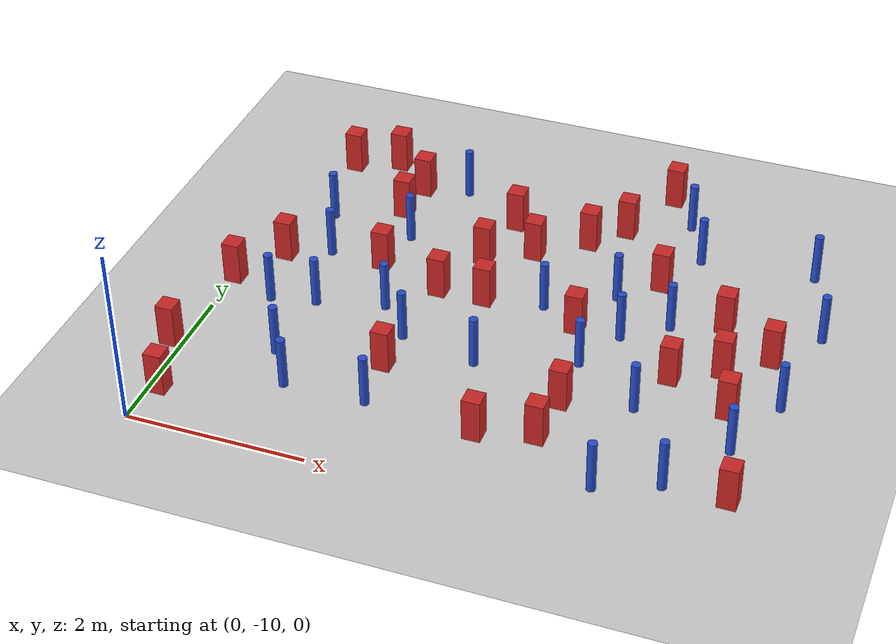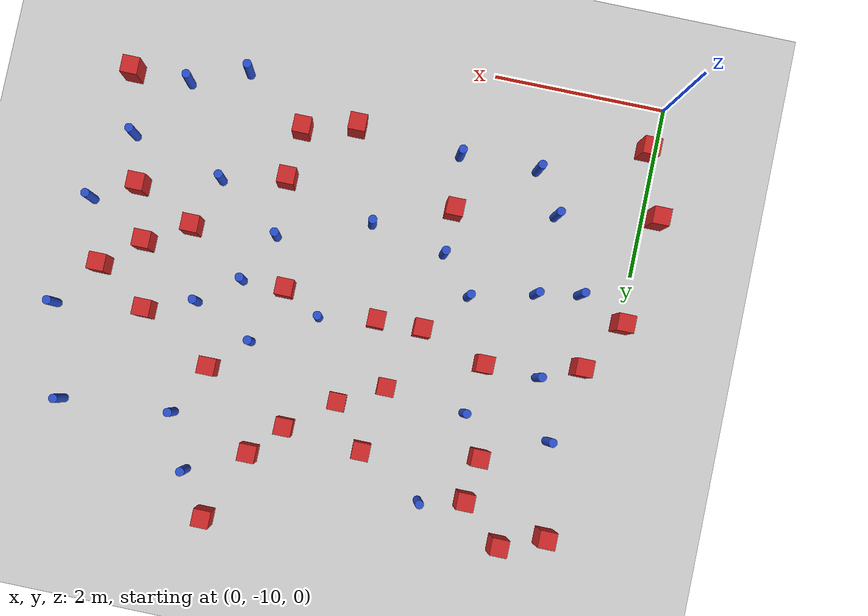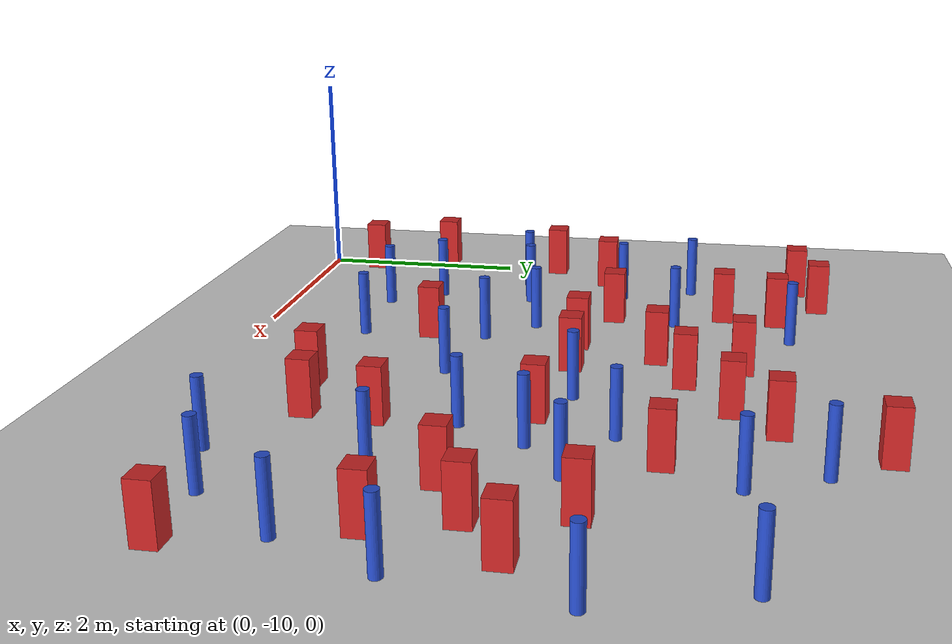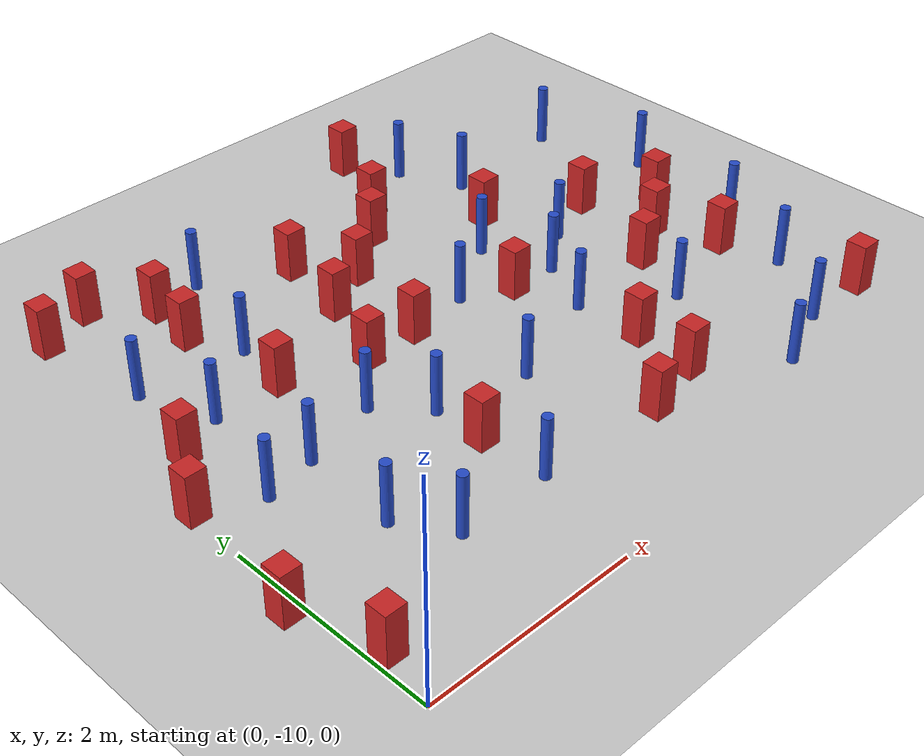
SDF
<sdf version="1.6">
 <world name="default">
  <model name="ground_plane">
   <static>1</static>
   <link name="link">
    <collision name="collision">
     <geometry><plane><normal>0 0 1</normal><size>100 100</size></plane></geometry>
     <surface><friction><ode><mu>100</mu><mu2>50</mu2></ode></friction></surface>
    </collision>
    <visual name="visual">
     <cast_shadows>0</cast_shadows>
     <geometry><plane><normal>0 0 1</normal><size>100 100</size></plane></geometry>
     <material>
      <ambient>1.0 1.0 1.0 1.0</ambient>
      <diffuse>0.8 0.8 0.8 1.0</diffuse>
      <specular>0.01 0.01 0.01 1.000000</specular>
     </material>
    </visual>
   </link>
  </model>
  <model name="pole_obstacle2">
   <static>true</static>
   <pose>6.14830196329 -5.28207078286 2.88873142074e-08 -9.90536690842e-09 4.60219948965e-07 -1.20965994976e-07</pose>
   <link name="link">
    <pose>0 0 0.3 0 -0 0</pose>
    <inertial>
     <mass>1</mass>
     <inertia><ixx>0.145833</ixx><ixy>0</ixy><ixz>0</ixz><iyy>0.145833</iyy><iyz>0</iyz><izz>0.125</izz></inertia>
    </inertial>
    <collision name="collision">
     <geometry><cylinder><radius>0.05</radius><length>.6</length></cylinder></geometry>
    </collision>
    <visual name="visual">
     <geometry><cylinder><radius>0.05</radius><length>.6</length></cylinder></geometry>
     <material>
      <script><name>Gazebo/Blue</name><uri>file://media/materials/scripts/gazebo.material</uri></script>
     </material>
    </visual>
   </link>
  </model>
  <model name="square_post_obstacle3">
   <static>true</static>
   <pose>0.921883301108 -4.67364424188 8.22691968438e-08 7.22125133819e-06 -7.54495500217e-07 2.29674213826e-05</pose>
   <link name="link">
    <pose>0 0 0.25 0 -0 0</pose>
    <inertial>
     <mass>100</mass>
     <inertia>
      <ixx>0.166667</ixx>
      <ixy>0</ixy>
      <ixz>0</ixz>
      <iyy>0.166667</iyy>
      <iyz>0</iyz>
      <izz>0.166667</izz>
     </inertia>
    </inertial>
    <collision name="collision"><geometry><box><size>.2 .2 .5</size></box></geometry></collision>
    <visual name="visual">
     <geometry><box><size>.2 .2 .5</size></box></geometry>
     <material>
      <script><name>Gazebo/Red</name><uri>file://media/materials/scripts/gazebo.material</uri></script>
     </material>
    </visual>
   </link>
  </model>
  <model name="pole_obstacle19">
   <static>true</static>
   <pose>4.8620279379 -6.68694951496 2.88873142074e-08 -9.90536690842e-09 4.60219948965e-07 -1.20965994976e-07</pose>
   <link name="link">
    <pose>0 0 0.3 0 -0 0</pose>
    <inertial>
     <mass>1</mass>
     <inertia><ixx>0.145833</ixx><ixy>0</ixy><ixz>0</ixz><iyy>0.145833</iyy><iyz>0</iyz><izz>0.125</izz></inertia>
    </inertial>
    <collision name="collision">
     <geometry><cylinder><radius>0.05</radius><length>.6</length></cylinder></geometry>
    </collision>
    <visual name="visual">
     <geometry><cylinder><radius>0.05</radius><length>.6</length></cylinder></geometry>
     <material>
      <script><name>Gazebo/Blue</name><uri>file://media/materials/scripts/gazebo.material</uri></script>
     </material>
    </visual>
   </link>
  </model>
  <model name="pole_obstacle20">
   <static>true</static>
   <pose>3.45152919088 -6.79619398511 2.88873142074e-08 -9.90536689859e-09 4.60219948989e-07 -1.20965994961e-07</pose>
   <link name="link">
    <pose>0 0 0.3 0 -0 0</pose>
    <inertial>
     <mass>1</mass>
     <inertia><ixx>0.145833</ixx><ixy>0</ixy><ixz>0</ixz><iyy>0.145833</iyy><iyz>0</iyz><izz>0.125</izz></inertia>
    </inertial>
    <collision name="collision">
     <geometry><cylinder><radius>0.05</radius><length>.6</length></cylinder></geometry>
    </collision>
    <visual name="visual">
     <geometry><cylinder><radius>0.05</radius><length>.6</length></cylinder></geometry>
     <material>
      <script><name>Gazebo/Blue</name><uri>file://media/materials/scripts/gazebo.material</uri></script>
     </material>
    </visual>
   </link>
  </model>
  <model name="pole_obstacle24">
   <static>true</static>
   <pose>1.06063492291 -7.56927164042 2.88873142074e-08 -9.90536689852e-09 4.60219948989e-07 -1.2096599496e-07</pose>
   <link name="link">
    <pose>0 0 0.3 0 -0 0</pose>
    <inertial>
     <mass>1</mass>
     <inertia><ixx>0.145833</ixx><ixy>0</ixy><ixz>0</ixz><iyy>0.145833</iyy><iyz>0</iyz><izz>0.125</izz></inertia>
    </inertial>
    <collision name="collision">
     <geometry><cylinder><radius>0.05</radius><length>.6</length></cylinder></geometry>
    </collision>
    <visual name="visual">
     <geometry><cylinder><radius>0.05</radius><length>.6</length></cylinder></geometry>
     <material>
      <script><name>Gazebo/Blue</name><uri>file://media/materials/scripts/gazebo.material</uri></script>
     </material>
    </visual>
   </link>
  </model>
  <model name="square_post_obstacle21">
   <static>true</static>
   <pose>4.13120323358 -8.29425294146 8.22691968438e-08 7.22125133819e-06 -7.54495500217e-07 2.29674213826e-05</pose>
   <link name="link">
    <pose>0 0 0.25 0 -0 0</pose>
    <inertial>
     <mass>100</mass>
     <inertia>
      <ixx>0.166667</ixx>
      <ixy>0</ixy>
      <ixz>0</ixz>
      <iyy>0.166667</iyy>
      <iyz>0</iyz>
      <izz>0.166667</izz>
     </inertia>
    </inertial>
    <collision name="collision"><geometry><box><size>.2 .2 .5</size></box></geometry></collision>
    <visual name="visual">
     <geometry><box><size>.2 .2 .5</size></box></geometry>
     <material>
      <script><name>Gazebo/Red</name><uri>file://media/materials/scripts/gazebo.material</uri></script>
     </material>
    </visual>
   </link>
  </model>
  <model name="square_post_obstacle25">
   <static>true</static>
   <pose>3.04130959436 -5.89216657844 8.22691968438e-08 7.2212513382e-06 -7.54495500217e-07 2.29674213826e-05</pose>
   <link name="link">
    <pose>0 0 0.25 0 -0 0</pose>
    <inertial>
     <mass>100</mass>
     <inertia>
      <ixx>0.166667</ixx>
      <ixy>0</ixy>
      <ixz>0</ixz>
      <iyy>0.166667</iyy>
      <iyz>0</iyz>
      <izz>0.166667</izz>
     </inertia>
    </inertial>
    <collision name="collision"><geometry><box><size>.2 .2 .5</size></box></geometry></collision>
    <visual name="visual">
     <geometry><box><size>.2 .2 .5</size></box></geometry>
     <material>
      <script><name>Gazebo/Red</name><uri>file://media/materials/scripts/gazebo.material</uri></script>
     </material>
    </visual>
   </link>
  </model>
  <model name="pole_obstacle38">
   <static>true</static>
   <pose>4.86386477425 -5.39168850401 2.88873142074e-08 -9.90536690842e-09 4.60219948965e-07 -1.20965994976e-07</pose>
   <link name="link">
    <pose>0 0 0.3 0 -0 0</pose>
    <inertial>
     <mass>1</mass>
     <inertia><ixx>0.145833</ixx><ixy>0</ixy><ixz>0</ixz><iyy>0.145833</iyy><iyz>0</iyz><izz>0.125</izz></inertia>
    </inertial>
    <collision name="collision">
     <geometry><cylinder><radius>0.05</radius><length>.6</length></cylinder></geometry>
    </collision>
    <visual name="visual">
     <geometry><cylinder><radius>0.05</radius><length>.6</length></cylinder></geometry>
     <material>
      <script><name>Gazebo/Blue</name><uri>file://media/materials/scripts/gazebo.material</uri></script>
     </material>
    </visual>
   </link>
  </model>
  <model name="pole_obstacle48">
   <static>true</static>
   <pose>6.30036852548 -7.6127516848 2.88873142074e-08 -9.90536690842e-09 4.60219948965e-07 -1.20965994976e-07</pose>
   <link name="link">
    <pose>0 0 0.3 0 -0 0</pose>
    <inertial>
     <mass>1</mass>
     <inertia><ixx>0.145833</ixx><ixy>0</ixy><ixz>0</ixz><iyy>0.145833</iyy><iyz>0</iyz><izz>0.125</izz></inertia>
    </inertial>
    <collision name="collision">
     <geometry><cylinder><radius>0.05</radius><length>.6</length></cylinder></geometry>
    </collision>
    <visual name="visual">
     <geometry><cylinder><radius>0.05</radius><length>.6</length></cylinder></geometry>
     <material>
      <script><name>Gazebo/Blue</name><uri>file://media/materials/scripts/gazebo.material</uri></script>
     </material>
    </visual>
   </link>
  </model>
  <model name="pole_obstacle49">
   <static>true</static>
   <pose>4.16082054586 -6.36403205399 2.88873142074e-08 -9.90536690842e-09 4.60219948965e-07 -1.20965994976e-07</pose>
   <link name="link">
    <pose>0 0 0.3 0 -0 0</pose>
    <inertial>
     <mass>1</mass>
     <inertia><ixx>0.145833</ixx><ixy>0</ixy><ixz>0</ixz><iyy>0.145833</iyy><iyz>0</iyz><izz>0.125</izz></inertia>
    </inertial>
    <collision name="collision">
     <geometry><cylinder><radius>0.05</radius><length>.6</length></cylinder></geometry>
    </collision>
    <visual name="visual">
     <geometry><cylinder><radius>0.05</radius><length>.6</length></cylinder></geometry>
     <material>
      <script><name>Gazebo/Blue</name><uri>file://media/materials/scripts/gazebo.material</uri></script>
     </material>
    </visual>
   </link>
  </model>
  <model name="pole_obstacle50">
   <static>true</static>
   <pose>2.22852226633 -8.97316546732 2.88873142074e-08 -9.90536692318e-09 4.6021994893e-07 -1.20965994988e-07</pose>
   <link name="link">
    <pose>0 0 0.3 0 -0 0</pose>
    <inertial>
     <mass>1</mass>
     <inertia><ixx>0.145833</ixx><ixy>0</ixy><ixz>0</ixz><iyy>0.145833</iyy><iyz>0</iyz><izz>0.125</izz></inertia>
    </inertial>
    <collision name="collision">
     <geometry><cylinder><radius>0.05</radius><length>.6</length></cylinder></geometry>
    </collision>
    <visual name="visual">
     <geometry><cylinder><radius>0.05</radius><length>.6</length></cylinder></geometry>
     <material>
      <script><name>Gazebo/Blue</name><uri>file://media/materials/scripts/gazebo.material</uri></script>
     </material>
    </visual>
   </link>
  </model>
  <model name="pole_obstacle51">
   <static>true</static>
   <pose>4.58739852245 -4.77712400438 2.88873142074e-08 -9.90536690842e-09 4.60219948965e-07 -1.20965994976e-07</pose>
   <link name="link">
    <pose>0 0 0.3 0 -0 0</pose>
    <inertial>
     <mass>1</mass>
     <inertia><ixx>0.145833</ixx><ixy>0</ixy><ixz>0</ixz><iyy>0.145833</iyy><iyz>0</iyz><izz>0.125</izz></inertia>
    </inertial>
    <collision name="collision">
     <geometry><cylinder><radius>0.05</radius><length>.6</length></cylinder></geometry>
    </collision>
    <visual name="visual">
     <geometry><cylinder><radius>0.05</radius><length>.6</length></cylinder></geometry>
     <material>
      <script><name>Gazebo/Blue</name><uri>file://media/materials/scripts/gazebo.material</uri></script>
     </material>
    </visual>
   </link>
  </model>
  <model name="pole_obstacle58">
   <static>true</static>
   <pose>4.39896044574 -7.03645893247 2.88873142074e-08 -9.90536690842e-09 4.60219948965e-07 -1.20965994976e-07</pose>
   <link name="link">
    <pose>0 0 0.3 0 -0 0</pose>
    <inertial>
     <mass>1</mass>
     <inertia><ixx>0.145833</ixx><ixy>0</ixy><ixz>0</ixz><iyy>0.145833</iyy><iyz>0</iyz><izz>0.125</izz></inertia>
    </inertial>
    <collision name="collision">
     <geometry><cylinder><radius>0.05</radius><length>.6</length></cylinder></geometry>
    </collision>
    <visual name="visual">
     <geometry><cylinder><radius>0.05</radius><length>.6</length></cylinder></geometry>
     <material>
      <script><name>Gazebo/Blue</name><uri>file://media/materials/scripts/gazebo.material</uri></script>
     </material>
    </visual>
   </link>
  </model>
  <model name="pole_obstacle60">
   <static>true</static>
   <pose>5.97434079189 -8.43649098681 2.88873142074e-08 -9.9053668967e-09 4.60219948993e-07 -1.20965994957e-07</pose>
   <link name="link">
    <pose>0 0 0.3 0 -0 0</pose>
    <inertial>
     <mass>1</mass>
     <inertia><ixx>0.145833</ixx><ixy>0</ixy><ixz>0</ixz><iyy>0.145833</iyy><iyz>0</iyz><izz>0.125</izz></inertia>
    </inertial>
    <collision name="collision">
     <geometry><cylinder><radius>0.05</radius><length>.6</length></cylinder></geometry>
    </collision>
    <visual name="visual">
     <geometry><cylinder><radius>0.05</radius><length>.6</length></cylinder></geometry>
     <material>
      <script><name>Gazebo/Blue</name><uri>file://media/materials/scripts/gazebo.material</uri></script>
     </material>
    </visual>
   </link>
  </model>
  <model name="pole_obstacle67">
   <static>true</static>
   <pose>1.58931098141 -6.06284011307 2.88873142074e-08 -9.90536689852e-09 4.60219948989e-07 -1.2096599496e-07</pose>
   <link name="link">
    <pose>0 0 0.3 0 -0 0</pose>
    <inertial>
     <mass>1</mass>
     <inertia><ixx>0.145833</ixx><ixy>0</ixy><ixz>0</ixz><iyy>0.145833</iyy><iyz>0</iyz><izz>0.125</izz></inertia>
    </inertial>
    <collision name="collision">
     <geometry><cylinder><radius>0.05</radius><length>.6</length></cylinder></geometry>
    </collision>
    <visual name="visual">
     <geometry><cylinder><radius>0.05</radius><length>.6</length></cylinder></geometry>
     <material>
      <script><name>Gazebo/Blue</name><uri>file://media/materials/scripts/gazebo.material</uri></script>
     </material>
    </visual>
   </link>
  </model>
  <model name="square_post_obstacle54">
   <static>true</static>
   <pose>1.48673899308 -6.65389181109 8.22691968438e-08 7.2212513382e-06 -7.54495500217e-07 2.29674213826e-05</pose>
   <link name="link">
    <pose>0 0 0.25 0 -0 0</pose>
    <inertial>
     <mass>100</mass>
     <inertia>
      <ixx>0.166667</ixx>
      <ixy>0</ixy>
      <ixz>0</ixz>
      <iyy>0.166667</iyy>
      <iyz>0</iyz>
      <izz>0.166667</izz>
     </inertia>
    </inertial>
    <collision name="collision"><geometry><box><size>.2 .2 .5</size></box></geometry></collision>
    <visual name="visual">
     <geometry><box><size>.2 .2 .5</size></box></geometry>
     <material>
      <script><name>Gazebo/Red</name><uri>file://media/materials/scripts/gazebo.material</uri></script>
     </material>
    </visual>
   </link>
  </model>
  <model name="square_post_obstacle60">
   <static>true</static>
   <pose>2.66152526372 -5.40451966669 8.22691968438e-08 7.2212513382e-06 -7.54495500217e-07 2.29674213826e-05</pose>
   <link name="link">
    <pose>0 0 0.25 0 -0 0</pose>
    <inertial>
     <mass>100</mass>
     <inertia>
      <ixx>0.166667</ixx>
      <ixy>0</ixy>
      <ixz>0</ixz>
      <iyy>0.166667</iyy>
      <iyz>0</iyz>
      <izz>0.166667</izz>
     </inertia>
    </inertial>
    <collision name="collision"><geometry><box><size>.2 .2 .5</size></box></geometry></collision>
    <visual name="visual">
     <geometry><box><size>.2 .2 .5</size></box></geometry>
     <material>
      <script><name>Gazebo/Red</name><uri>file://media/materials/scripts/gazebo.material</uri></script>
     </material>
    </visual>
   </link>
  </model>
  <model name="pole_obstacle92">
   <static>true</static>
   <pose>3.06447727545 -7.98257437895 2.88873142074e-08 -9.90536692129e-09 4.60219948935e-07 -1.20965994985e-07</pose>
   <link name="link">
    <pose>0 0 0.3 0 -0 0</pose>
    <inertial>
     <mass>1</mass>
     <inertia><ixx>0.145833</ixx><ixy>0</ixy><ixz>0</ixz><iyy>0.145833</iyy><iyz>0</iyz><izz>0.125</izz></inertia>
    </inertial>
    <collision name="collision">
     <geometry><cylinder><radius>0.05</radius><length>.6</length></cylinder></geometry>
    </collision>
    <visual name="visual">
     <geometry><cylinder><radius>0.05</radius><length>.6</length></cylinder></geometry>
     <material>
      <script><name>Gazebo/Blue</name><uri>file://media/materials/scripts/gazebo.material</uri></script>
     </material>
    </visual>
   </link>
  </model>
  <model name="pole_obstacle93">
   <static>true</static>
   <pose>1.00525685277 -8.50765018578 2.88873142074e-08 -9.90536690572e-09 4.60219948972e-07 -1.20965994971e-07</pose>
   <link name="link">
    <pose>0 0 0.3 0 -0 0</pose>
    <inertial>
     <mass>1</mass>
     <inertia><ixx>0.145833</ixx><ixy>0</ixy><ixz>0</ixz><iyy>0.145833</iyy><iyz>0</iyz><izz>0.125</izz></inertia>
    </inertial>
    <collision name="collision">
     <geometry><cylinder><radius>0.05</radius><length>.6</length></cylinder></geometry>
    </collision>
    <visual name="visual">
     <geometry><cylinder><radius>0.05</radius><length>.6</length></cylinder></geometry>
     <material>
      <script><name>Gazebo/Blue</name><uri>file://media/materials/scripts/gazebo.material</uri></script>
     </material>
    </visual>
   </link>
  </model>
  <model name="pole_obstacle96">
   <static>true</static>
   <pose>1.90405769673 -4.97104754531 2.88873142074e-08 -9.90536689852e-09 4.60219948989e-07 -1.2096599496e-07</pose>
   <link name="link">
    <pose>0 0 0.3 0 -0 0</pose>
    <inertial>
     <mass>1</mass>
     <inertia><ixx>0.145833</ixx><ixy>0</ixy><ixz>0</ixz><iyy>0.145833</iyy><iyz>0</iyz><izz>0.125</izz></inertia>
    </inertial>
    <collision name="collision">
     <geometry><cylinder><radius>0.05</radius><length>.6</length></cylinder></geometry>
    </collision>
    <visual name="visual">
     <geometry><cylinder><radius>0.05</radius><length>.6</length></cylinder></geometry>
     <material>
      <script><name>Gazebo/Blue</name><uri>file://media/materials/scripts/gazebo.material</uri></script>
     </material>
    </visual>
   </link>
  </model>
  <model name="square_post_obstacle91">
   <static>true</static>
   <pose>0.379425409082 -6.84290227758 8.22691968438e-08 7.22125133819e-06 -7.54495500217e-07 2.29674213826e-05</pose>
   <link name="link">
    <pose>0 0 0.25 0 -0 0</pose>
    <inertial>
     <mass>100</mass>
     <inertia>
      <ixx>0.166667</ixx>
      <ixy>0</ixy>
      <ixz>0</ixz>
      <iyy>0.166667</iyy>
      <iyz>0</iyz>
      <izz>0.166667</izz>
     </inertia>
    </inertial>
    <collision name="collision"><geometry><box><size>.2 .2 .5</size></box></geometry></collision>
    <visual name="visual">
     <geometry><box><size>.2 .2 .5</size></box></geometry>
     <material>
      <script><name>Gazebo/Red</name><uri>file://media/materials/scripts/gazebo.material</uri></script>
     </material>
    </visual>
   </link>
  </model>
  <model name="pole_obstacle100">
   <static>true</static>
   <pose>4.87629713632 -8.128599076 2.88873142074e-08 -9.9053668967e-09 4.60219948993e-07 -1.20965994957e-07</pose>
   <link name="link">
    <pose>0 0 0.3 0 -0 0</pose>
    <inertial>
     <mass>1</mass>
     <inertia><ixx>0.145833</ixx><ixy>0</ixy><ixz>0</ixz><iyy>0.145833</iyy><iyz>0</iyz><izz>0.125</izz></inertia>
    </inertial>
    <collision name="collision">
     <geometry><cylinder><radius>0.05</radius><length>.6</length></cylinder></geometry>
    </collision>
    <visual name="visual">
     <geometry><cylinder><radius>0.05</radius><length>.6</length></cylinder></geometry>
     <material>
      <script><name>Gazebo/Blue</name><uri>file://media/materials/scripts/gazebo.material</uri></script>
     </material>
    </visual>
   </link>
  </model>
  <model name="square_post_obstacle92">
   <static>true</static>
   <pose>2.79375519177 -6.90324306982 8.22691968438e-08 7.22125133819e-06 -7.54495500217e-07 2.29674213826e-05</pose>
   <link name="link">
    <pose>0 0 0.25 0 -0 0</pose>
    <inertial>
     <mass>100</mass>
     <inertia>
      <ixx>0.166667</ixx>
      <ixy>0</ixy>
      <ixz>0</ixz>
      <iyy>0.166667</iyy>
      <iyz>0</iyz>
      <izz>0.166667</izz>
     </inertia>
    </inertial>
    <collision name="collision"><geometry><box><size>.2 .2 .5</size></box></geometry></collision>
    <visual name="visual">
     <geometry><box><size>.2 .2 .5</size></box></geometry>
     <material>
      <script><name>Gazebo/Red</name><uri>file://media/materials/scripts/gazebo.material</uri></script>
     </material>
    </visual>
   </link>
  </model>
  <model name="square_post_obstacle93">
   <static>true</static>
   <pose>5.09053748616 -7.53369930563 8.22691968438e-08 7.2212513382e-06 -7.54495500217e-07 2.29674213826e-05</pose>
   <link name="link">
    <pose>0 0 0.25 0 -0 0</pose>
    <inertial>
     <mass>100</mass>
     <inertia>
      <ixx>0.166667</ixx>
      <ixy>0</ixy>
      <ixz>0</ixz>
      <iyy>0.166667</iyy>
      <iyz>0</iyz>
      <izz>0.166667</izz>
     </inertia>
    </inertial>
    <collision name="collision"><geometry><box><size>.2 .2 .5</size></box></geometry></collision>
    <visual name="visual">
     <geometry><box><size>.2 .2 .5</size></box></geometry>
     <material>
      <script><name>Gazebo/Red</name><uri>file://media/materials/scripts/gazebo.material</uri></script>
     </material>
    </visual>
   </link>
  </model>
  <model name="square_post_obstacle94">
   <static>true</static>
   <pose>3.46291798454 -9.05596250605 8.22691968438e-08 7.22125133819e-06 -7.54495500217e-07 2.29674213826e-05</pose>
   <link name="link">
    <pose>0 0 0.25 0 -0 0</pose>
    <inertial>
     <mass>100</mass>
     <inertia>
      <ixx>0.166667</ixx>
      <ixy>0</ixy>
      <ixz>0</ixz>
      <iyy>0.166667</iyy>
      <iyz>0</iyz>
      <izz>0.166667</izz>
     </inertia>
    </inertial>
    <collision name="collision"><geometry><box><size>.2 .2 .5</size></box></geometry></collision>
    <visual name="visual">
     <geometry><box><size>.2 .2 .5</size></box></geometry>
     <material>
      <script><name>Gazebo/Red</name><uri>file://media/materials/scripts/gazebo.material</uri></script>
     </material>
    </visual>
   </link>
  </model>
  <model name="square_post_obstacle95">
   <static>true</static>
   <pose>0.122400278115 -9.47579251404 8.22691968438e-08 7.22125133819e-06 -7.54495500217e-07 2.29674213826e-05</pose>
   <link name="link">
    <pose>0 0 0.25 0 -0 0</pose>
    <inertial>
     <mass>100</mass>
     <inertia>
      <ixx>0.166667</ixx>
      <ixy>0</ixy>
      <ixz>0</ixz>
      <iyy>0.166667</iyy>
      <iyz>0</iyz>
      <izz>0.166667</izz>
     </inertia>
    </inertial>
    <collision name="collision"><geometry><box><size>.2 .2 .5</size></box></geometry></collision>
    <visual name="visual">
     <geometry><box><size>.2 .2 .5</size></box></geometry>
     <material>
      <script><name>Gazebo/Red</name><uri>file://media/materials/scripts/gazebo.material</uri></script>
     </material>
    </visual>
   </link>
  </model>
  <model name="square_post_obstacle101">
   <static>true</static>
   <pose>6.14324402518 -9.16347679035 8.22691968438e-08 7.22125133819e-06 -7.54495500217e-07 2.29674213826e-05</pose>
   <link name="link">
    <pose>0 0 0.25 0 -0 0</pose>
    <inertial>
     <mass>100</mass>
     <inertia>
      <ixx>0.166667</ixx>
      <ixy>0</ixy>
      <ixz>0</ixz>
      <iyy>0.166667</iyy>
      <iyz>0</iyz>
      <izz>0.166667</izz>
     </inertia>
    </inertial>
    <collision name="collision"><geometry><box><size>.2 .2 .5</size></box></geometry></collision>
    <visual name="visual">
     <geometry><box><size>.2 .2 .5</size></box></geometry>
     <material>
      <script><name>Gazebo/Red</name><uri>file://media/materials/scripts/gazebo.material</uri></script>
     </material>
    </visual>
   </link>
  </model>
  <model name="square_post_obstacle103">
   <static>true</static>
   <pose>4.56479990707 -5.98583418884 8.22691968438e-08 7.2212513382e-06 -7.54495500217e-07 2.29674213826e-05</pose>
   <link name="link">
    <pose>0 0 0.25 0 -0 0</pose>
    <inertial>
     <mass>100</mass>
     <inertia>
      <ixx>0.166667</ixx>
      <ixy>0</ixy>
      <ixz>0</ixz>
      <iyy>0.166667</iyy>
      <iyz>0</iyz>
      <izz>0.166667</izz>
     </inertia>
    </inertial>
    <collision name="collision"><geometry><box><size>.2 .2 .5</size></box></geometry></collision>
    <visual name="visual">
     <geometry><box><size>.2 .2 .5</size></box></geometry>
     <material>
      <script><name>Gazebo/Red</name><uri>file://media/materials/scripts/gazebo.material</uri></script>
     </material>
    </visual>
   </link>
  </model>
  <model name="square_post_obstacle105">
   <static>true</static>
   <pose>-0.137528142259 -8.70899687216 8.22691968438e-08 7.22125133819e-06 -7.54495500217e-07 2.29674213826e-05</pose>
   <link name="link">
    <pose>0 0 0.25 0 -0 0</pose>
    <inertial>
     <mass>100</mass>
     <inertia>
      <ixx>0.166667</ixx>
      <ixy>0</ixy>
      <ixz>0</ixz>
      <iyy>0.166667</iyy>
      <iyz>0</iyz>
      <izz>0.166667</izz>
     </inertia>
    </inertial>
    <collision name="collision"><geometry><box><size>.2 .2 .5</size></box></geometry></collision>
    <visual name="visual">
     <geometry><box><size>.2 .2 .5</size></box></geometry>
     <material>
      <script><name>Gazebo/Red</name><uri>file://media/materials/scripts/gazebo.material</uri></script>
     </material>
    </visual>
   </link>
  </model>
  <model name="pole_obstacle137">
   <static>true</static>
   <pose>6.45954651292 -6.34398706352 2.88873142074e-08 -9.90536690842e-09 4.60219948965e-07 -1.20965994976e-07</pose>
   <link name="link">
    <pose>0 0 0.3 0 -0 0</pose>
    <inertial>
     <mass>1</mass>
     <inertia><ixx>0.145833</ixx><ixy>0</ixy><ixz>0</ixz><iyy>0.145833</iyy><iyz>0</iyz><izz>0.125</izz></inertia>
    </inertial>
    <collision name="collision">
     <geometry><cylinder><radius>0.05</radius><length>.6</length></cylinder></geometry>
    </collision>
    <visual name="visual">
     <geometry><cylinder><radius>0.05</radius><length>.6</length></cylinder></geometry>
     <material>
      <script><name>Gazebo/Blue</name><uri>file://media/materials/scripts/gazebo.material</uri></script>
     </material>
    </visual>
   </link>
  </model>
  <model name="square_post_obstacle136">
   <static>true</static>
   <pose>1.32869666535 -5.60045859697 8.22691968438e-08 7.2212513382e-06 -7.54495500217e-07 2.29674213826e-05</pose>
   <link name="link">
    <pose>0 0 0.25 0 -0 0</pose>
    <inertial>
     <mass>100</mass>
     <inertia>
      <ixx>0.166667</ixx>
      <ixy>0</ixy>
      <ixz>0</ixz>
      <iyy>0.166667</iyy>
      <iyz>0</iyz>
      <izz>0.166667</izz>
     </inertia>
    </inertial>
    <collision name="collision"><geometry><box><size>.2 .2 .5</size></box></geometry></collision>
    <visual name="visual">
     <geometry><box><size>.2 .2 .5</size></box></geometry>
     <material>
      <script><name>Gazebo/Red</name><uri>file://media/materials/scripts/gazebo.material</uri></script>
     </material>
    </visual>
   </link>
  </model>
  <model name="pole_obstacle141">
   <static>true</static>
   <pose>4.82238303071 -9.42578638148 2.88873142074e-08 -9.9053668967e-09 4.60219948993e-07 -1.20965994957e-07</pose>
   <link name="link">
    <pose>0 0 0.3 0 -0 0</pose>
    <inertial>
     <mass>1</mass>
     <inertia><ixx>0.145833</ixx><ixy>0</ixy><ixz>0</ixz><iyy>0.145833</iyy><iyz>0</iyz><izz>0.125</izz></inertia>
    </inertial>
    <collision name="collision">
     <geometry><cylinder><radius>0.05</radius><length>.6</length></cylinder></geometry>
    </collision>
    <visual name="visual">
     <geometry><cylinder><radius>0.05</radius><length>.6</length></cylinder></geometry>
     <material>
      <script><name>Gazebo/Blue</name><uri>file://media/materials/scripts/gazebo.material</uri></script>
     </material>
    </visual>
   </link>
  </model>
  <model name="pole_obstacle147">
   <static>true</static>
   <pose>0.557652956789 -7.66743373532 2.88873142074e-08 -9.90536689661e-09 4.60219948993e-07 -1.20965994957e-07</pose>
   <link name="link">
    <pose>0 0 0.3 0 -0 0</pose>
    <inertial>
     <mass>1</mass>
     <inertia><ixx>0.145833</ixx><ixy>0</ixy><ixz>0</ixz><iyy>0.145833</iyy><iyz>0</iyz><izz>0.125</izz></inertia>
    </inertial>
    <collision name="collision">
     <geometry><cylinder><radius>0.05</radius><length>.6</length></cylinder></geometry>
    </collision>
    <visual name="visual">
     <geometry><cylinder><radius>0.05</radius><length>.6</length></cylinder></geometry>
     <material>
      <script><name>Gazebo/Blue</name><uri>file://media/materials/scripts/gazebo.material</uri></script>
     </material>
    </visual>
   </link>
  </model>
  <model name="square_post_obstacle141">
   <static>true</static>
   <pose>4.26276089913 -4.30339742278 8.22691968438e-08 7.2212513382e-06 -7.54495500217e-07 2.29674213826e-05</pose>
   <link name="link">
    <pose>0 0 0.25 0 -0 0</pose>
    <inertial>
     <mass>100</mass>
     <inertia>
      <ixx>0.166667</ixx>
      <ixy>0</ixy>
      <ixz>0</ixz>
      <iyy>0.166667</iyy>
      <iyz>0</iyz>
      <izz>0.166667</izz>
     </inertia>
    </inertial>
    <collision name="collision"><geometry><box><size>.2 .2 .5</size></box></geometry></collision>
    <visual name="visual">
     <geometry><box><size>.2 .2 .5</size></box></geometry>
     <material>
      <script><name>Gazebo/Red</name><uri>file://media/materials/scripts/gazebo.material</uri></script>
     </material>
    </visual>
   </link>
  </model>
  <model name="pole_obstacle158">
   <static>true</static>
   <pose>0.584466056857 -5.94308688479 2.88873142074e-08 -9.90536689661e-09 4.60219948993e-07 -1.20965994957e-07</pose>
   <link name="link">
    <pose>0 0 0.3 0 -0 0</pose>
    <inertial>
     <mass>1</mass>
     <inertia><ixx>0.145833</ixx><ixy>0</ixy><ixz>0</ixz><iyy>0.145833</iyy><iyz>0</iyz><izz>0.125</izz></inertia>
    </inertial>
    <collision name="collision">
     <geometry><cylinder><radius>0.05</radius><length>.6</length></cylinder></geometry>
    </collision>
    <visual name="visual">
     <geometry><cylinder><radius>0.05</radius><length>.6</length></cylinder></geometry>
     <material>
      <script><name>Gazebo/Blue</name><uri>file://media/materials/scripts/gazebo.material</uri></script>
     </material>
    </visual>
   </link>
  </model>
  <model name="pole_obstacle162">
   <static>true</static>
   <pose>0.846315736213 -6.63569459688 2.88873142074e-08 -9.90536689661e-09 4.60219948993e-07 -1.20965994957e-07</pose>
   <link name="link">
    <pose>0 0 0.3 0 -0 0</pose>
    <inertial>
     <mass>1</mass>
     <inertia><ixx>0.145833</ixx><ixy>0</ixy><ixz>0</ixz><iyy>0.145833</iyy><iyz>0</iyz><izz>0.125</izz></inertia>
    </inertial>
    <collision name="collision">
     <geometry><cylinder><radius>0.05</radius><length>.6</length></cylinder></geometry>
    </collision>
    <visual name="visual">
     <geometry><cylinder><radius>0.05</radius><length>.6</length></cylinder></geometry>
     <material>
      <script><name>Gazebo/Blue</name><uri>file://media/materials/scripts/gazebo.material</uri></script>
     </material>
    </visual>
   </link>
  </model>
  <model name="square_post_obstacle160">
   <static>true</static>
   <pose>5.42141837015 -6.48421255824 8.22691968438e-08 7.2212513382e-06 -7.54495500217e-07 2.29674213826e-05</pose>
   <link name="link">
    <pose>0 0 0.25 0 -0 0</pose>
    <inertial>
     <mass>100</mass>
     <inertia>
      <ixx>0.166667</ixx>
      <ixy>0</ixy>
      <ixz>0</ixz>
      <iyy>0.166667</iyy>
      <iyz>0</iyz>
      <izz>0.166667</izz>
     </inertia>
    </inertial>
    <collision name="collision"><geometry><box><size>.2 .2 .5</size></box></geometry></collision>
    <visual name="visual">
     <geometry><box><size>.2 .2 .5</size></box></geometry>
     <material>
      <script><name>Gazebo/Red</name><uri>file://media/materials/scripts/gazebo.material</uri></script>
     </material>
    </visual>
   </link>
  </model>
  <model name="pole_obstacle166">
   <static>true</static>
   <pose>1.31442611946 -8.98761419985 2.88873142074e-08 -9.90536690474e-09 4.60219948974e-07 -1.2096599497e-07</pose>
   <link name="link">
    <pose>0 0 0.3 0 -0 0</pose>
    <inertial>
     <mass>1</mass>
     <inertia><ixx>0.145833</ixx><ixy>0</ixy><ixz>0</ixz><iyy>0.145833</iyy><iyz>0</iyz><izz>0.125</izz></inertia>
    </inertial>
    <collision name="collision">
     <geometry><cylinder><radius>0.05</radius><length>.6</length></cylinder></geometry>
    </collision>
    <visual name="visual">
     <geometry><cylinder><radius>0.05</radius><length>.6</length></cylinder></geometry>
     <material>
      <script><name>Gazebo/Blue</name><uri>file://media/materials/scripts/gazebo.material</uri></script>
     </material>
    </visual>
   </link>
  </model>
  <model name="square_post_obstacle164">
   <static>true</static>
   <pose>6.03215886958 -6.88731266389 8.22691968438e-08 7.2212513382e-06 -7.54495500217e-07 2.29674213826e-05</pose>
   <link name="link">
    <pose>0 0 0.25 0 -0 0</pose>
    <inertial>
     <mass>100</mass>
     <inertia>
      <ixx>0.166667</ixx>
      <ixy>0</ixy>
      <ixz>0</ixz>
      <iyy>0.166667</iyy>
      <iyz>0</iyz>
      <izz>0.166667</izz>
     </inertia>
    </inertial>
    <collision name="collision"><geometry><box><size>.2 .2 .5</size></box></geometry></collision>
    <visual name="visual">
     <geometry><box><size>.2 .2 .5</size></box></geometry>
     <material>
      <script><name>Gazebo/Red</name><uri>file://media/materials/scripts/gazebo.material</uri></script>
     </material>
    </visual>
   </link>
  </model>
  <model name="square_post_obstacle170">
   <static>true</static>
   <pose>0.0208724667493 -7.43550943053 8.22691968438e-08 7.2212513382e-06 -7.54495500217e-07 2.29674213826e-05</pose>
   <link name="link">
    <pose>0 0 0.25 0 -0 0</pose>
    <inertial>
     <mass>100</mass>
     <inertia>
      <ixx>0.166667</ixx>
      <ixy>0</ixy>
      <ixz>0</ixz>
      <iyy>0.166667</iyy>
      <iyz>0</iyz>
      <izz>0.166667</izz>
     </inertia>
    </inertial>
    <collision name="collision"><geometry><box><size>.2 .2 .5</size></box></geometry></collision>
    <visual name="visual">
     <geometry><box><size>.2 .2 .5</size></box></geometry>
     <material>
      <script><name>Gazebo/Red</name><uri>file://media/materials/scripts/gazebo.material</uri></script>
     </material>
    </visual>
   </link>
  </model>
  <model name="square_post_obstacle171">
   <static>true</static>
   <pose>3.89230539467 -7.04039853324 8.22691968438e-08 7.22125133819e-06 -7.54495500217e-07 2.29674213826e-05</pose>
   <link name="link">
    <pose>0 0 0.25 0 -0 0</pose>
    <inertial>
     <mass>100</mass>
     <inertia>
      <ixx>0.166667</ixx>
      <ixy>0</ixy>
      <ixz>0</ixz>
      <iyy>0.166667</iyy>
      <iyz>0</iyz>
      <izz>0.166667</izz>
     </inertia>
    </inertial>
    <collision name="collision"><geometry><box><size>.2 .2 .5</size></box></geometry></collision>
    <visual name="visual">
     <geometry><box><size>.2 .2 .5</size></box></geometry>
     <material>
      <script><name>Gazebo/Red</name><uri>file://media/materials/scripts/gazebo.material</uri></script>
     </material>
    </visual>
   </link>
  </model>
  <model name="square_post_obstacle172">
   <static>true</static>
   <pose>0.411946596607 -4.86604819586 8.22691968438e-08 7.2212513382e-06 -7.54495500217e-07 2.29674213826e-05</pose>
   <link name="link">
    <pose>0 0 0.25 0 -0 0</pose>
    <inertial>
     <mass>100</mass>
     <inertia>
      <ixx>0.166667</ixx>
      <ixy>0</ixy>
      <ixz>0</ixz>
      <iyy>0.166667</iyy>
      <iyz>0</iyz>
      <izz>0.166667</izz>
     </inertia>
    </inertial>
    <collision name="collision"><geometry><box><size>.2 .2 .5</size></box></geometry></collision>
    <visual name="visual">
     <geometry><box><size>.2 .2 .5</size></box></geometry>
     <material>
      <script><name>Gazebo/Red</name><uri>file://media/materials/scripts/gazebo.material</uri></script>
     </material>
    </visual>
   </link>
  </model>
  <model name="pole_obstacle176">
   <static>true</static>
   <pose>5.47450393748 -9.17018917686 2.88873142074e-08 -9.9053668967e-09 4.60219948993e-07 -1.20965994957e-07</pose>
   <link name="link">
    <pose>0 0 0.3 0 -0 0</pose>
    <inertial>
     <mass>1</mass>
     <inertia><ixx>0.145833</ixx><ixy>0</ixy><ixz>0</ixz><iyy>0.145833</iyy><iyz>0</iyz><izz>0.125</izz></inertia>
    </inertial>
    <collision name="collision">
     <geometry><cylinder><radius>0.05</radius><length>.6</length></cylinder></geometry>
    </collision>
    <visual name="visual">
     <geometry><cylinder><radius>0.05</radius><length>.6</length></cylinder></geometry>
     <material>
      <script><name>Gazebo/Blue</name><uri>file://media/materials/scripts/gazebo.material</uri></script>
     </material>
    </visual>
   </link>
  </model>
  <model name="square_post_obstacle186">
   <static>true</static>
   <pose>3.5743152712 -5.49263649656 8.22691968438e-08 7.2212513382e-06 -7.54495500217e-07 2.29674213826e-05</pose>
   <link name="link">
    <pose>0 0 0.25 0 -0 0</pose>
    <inertial>
     <mass>100</mass>
     <inertia>
      <ixx>0.166667</ixx>
      <ixy>0</ixy>
      <ixz>0</ixz>
      <iyy>0.166667</iyy>
      <iyz>0</iyz>
      <izz>0.166667</izz>
     </inertia>
    </inertial>
    <collision name="collision"><geometry><box><size>.2 .2 .5</size></box></geometry></collision>
    <visual name="visual">
     <geometry><box><size>.2 .2 .5</size></box></geometry>
     <material>
      <script><name>Gazebo/Red</name><uri>file://media/materials/scripts/gazebo.material</uri></script>
     </material>
    </visual>
   </link>
  </model>
  <model name="square_post_obstacle189">
   <static>true</static>
   <pose>1.39314023945 -5.09139347383 8.22691968438e-08 7.2212513382e-06 -7.54495500217e-07 2.29674213826e-05</pose>
   <link name="link">
    <pose>0 0 0.25 0 -0 0</pose>
    <inertial>
     <mass>100</mass>
     <inertia>
      <ixx>0.166667</ixx>
      <ixy>0</ixy>
      <ixz>0</ixz>
      <iyy>0.166667</iyy>
      <iyz>0</iyz>
      <izz>0.166667</izz>
     </inertia>
    </inertial>
    <collision name="collision"><geometry><box><size>.2 .2 .5</size></box></geometry></collision>
    <visual name="visual">
     <geometry><box><size>.2 .2 .5</size></box></geometry>
     <material>
      <script><name>Gazebo/Red</name><uri>file://media/materials/scripts/gazebo.material</uri></script>
     </material>
    </visual>
   </link>
  </model>
  <model name="square_post_obstacle196">
   <static>true</static>
   <pose>2.52876748655 -6.1677983434 8.22691968438e-08 7.2212513382e-06 -7.54495500217e-07 2.29674213826e-05</pose>
   <link name="link">
    <pose>0 0 0.25 0 -0 0</pose>
    <inertial>
     <mass>100</mass>
     <inertia>
      <ixx>0.166667</ixx>
      <ixy>0</ixy>
      <ixz>0</ixz>
      <iyy>0.166667</iyy>
      <iyz>0</iyz>
      <izz>0.166667</izz>
     </inertia>
    </inertial>
    <collision name="collision"><geometry><box><size>.2 .2 .5</size></box></geometry></collision>
    <visual name="visual">
     <geometry><box><size>.2 .2 .5</size></box></geometry>
     <material>
      <script><name>Gazebo/Red</name><uri>file://media/materials/scripts/gazebo.material</uri></script>
     </material>
    </visual>
   </link>
  </model>
  <model name="square_post_obstacle199">
   <static>true</static>
   <pose>3.91271469787 -5.1211981595 8.22691968438e-08 7.2212513382e-06 -7.54495500217e-07 2.29674213826e-05</pose>
   <link name="link">
    <pose>0 0 0.25 0 -0 0</pose>
    <inertial>
     <mass>100</mass>
     <inertia>
      <ixx>0.166667</ixx>
      <ixy>0</ixy>
      <ixz>0</ixz>
      <iyy>0.166667</iyy>
      <iyz>0</iyz>
      <izz>0.166667</izz>
     </inertia>
    </inertial>
    <collision name="collision"><geometry><box><size>.2 .2 .5</size></box></geometry></collision>
    <visual name="visual">
     <geometry><box><size>.2 .2 .5</size></box></geometry>
     <material>
      <script><name>Gazebo/Red</name><uri>file://media/materials/scripts/gazebo.material</uri></script>
     </material>
    </visual>
   </link>
  </model>
  <model name="square_post_obstacle200">
   <static>true</static>
   <pose>2.1754433188 -8.33287238782 8.22691968438e-08 7.22125133819e-06 -7.54495500217e-07 2.29674213826e-05</pose>
   <link name="link">
    <pose>0 0 0.25 0 -0 0</pose>
    <inertial>
     <mass>100</mass>
     <inertia>
      <ixx>0.166667</ixx>
      <ixy>0</ixy>
      <ixz>0</ixz>
      <iyy>0.166667</iyy>
      <iyz>0</iyz>
      <izz>0.166667</izz>
     </inertia>
    </inertial>
    <collision name="collision"><geometry><box><size>.2 .2 .5</size></box></geometry></collision>
    <visual name="visual">
     <geometry><box><size>.2 .2 .5</size></box></geometry>
     <material>
      <script><name>Gazebo/Red</name><uri>file://media/materials/scripts/gazebo.material</uri></script>
     </material>
    </visual>
   </link>
  </model>
  <model name="pole_obstacle199">
   <static>true</static>
   <pose>1.81086320949 -7.38470981591 2.88873142074e-08 -9.90536689852e-09 4.60219948989e-07 -1.2096599496e-07</pose>
   <link name="link">
    <pose>0 0 0.3 0 -0 0</pose>
    <inertial>
     <mass>1</mass>
     <inertia><ixx>0.145833</ixx><ixy>0</ixy><ixz>0</ixz><iyy>0.145833</iyy><iyz>0</iyz><izz>0.125</izz></inertia>
    </inertial>
    <collision name="collision">
     <geometry><cylinder><radius>0.05</radius><length>.6</length></cylinder></geometry>
    </collision>
    <visual name="visual">
     <geometry><cylinder><radius>0.05</radius><length>.6</length></cylinder></geometry>
     <material>
      <script><name>Gazebo/Blue</name><uri>file://media/materials/scripts/gazebo.material</uri></script>
     </material>
    </visual>
   </link>
  </model>
  <model name="square_post_obstacle209">
   <static>true</static>
   <pose>4.07936799692 -8.8973202243 8.22691968438e-08 7.22125133819e-06 -7.54495500217e-07 2.29674213826e-05</pose>
   <link name="link">
    <pose>0 0 0.25 0 -0 0</pose>
    <inertial>
     <mass>100</mass>
     <inertia>
      <ixx>0.166667</ixx>
      <ixy>0</ixy>
      <ixz>0</ixz>
      <iyy>0.166667</iyy>
      <iyz>0</iyz>
      <izz>0.166667</izz>
     </inertia>
    </inertial>
    <collision name="collision"><geometry><box><size>.2 .2 .5</size></box></geometry></collision>
    <visual name="visual">
     <geometry><box><size>.2 .2 .5</size></box></geometry>
     <material>
      <script><name>Gazebo/Red</name><uri>file://media/materials/scripts/gazebo.material</uri></script>
     </material>
    </visual>
   </link>
  </model>
  <model name="square_post_obstacle214">
   <static>true</static>
   <pose>5.59003155747 -7.2456793959 8.22691968438e-08 7.22125133819e-06 -7.54495500217e-07 2.29674213826e-05</pose>
   <link name="link">
    <pose>0 0 0.25 0 -0 0</pose>
    <inertial>
     <mass>100</mass>
     <inertia>
      <ixx>0.166667</ixx>
      <ixy>0</ixy>
      <ixz>0</ixz>
      <iyy>0.166667</iyy>
      <iyz>0</iyz>
      <izz>0.166667</izz>
     </inertia>
    </inertial>
    <collision name="collision"><geometry><box><size>.2 .2 .5</size></box></geometry></collision>
    <visual name="visual">
     <geometry><box><size>.2 .2 .5</size></box></geometry>
     <material>
      <script><name>Gazebo/Red</name><uri>file://media/materials/scripts/gazebo.material</uri></script>
     </material>
    </visual>
   </link>
  </model>
  <model name="pole_obstacle208">
   <static>true</static>
   <pose>2.18508230391 -7.81118061844 2.88873142074e-08 -9.90536689859e-09 4.60219948989e-07 -1.20965994961e-07</pose>
   <link name="link">
    <pose>0 0 0.3 0 -0 0</pose>
    <inertial>
     <mass>1</mass>
     <inertia><ixx>0.145833</ixx><ixy>0</ixy><ixz>0</ixz><iyy>0.145833</iyy><iyz>0</iyz><izz>0.125</izz></inertia>
    </inertial>
    <collision name="collision">
     <geometry><cylinder><radius>0.05</radius><length>.6</length></cylinder></geometry>
    </collision>
    <visual name="visual">
     <geometry><cylinder><radius>0.05</radius><length>.6</length></cylinder></geometry>
     <material>
      <script><name>Gazebo/Blue</name><uri>file://media/materials/scripts/gazebo.material</uri></script>
     </material>
    </visual>
   </link>
  </model>
  <model name="pole_obstacle210">
   <static>true</static>
   <pose>4.12023037203 -7.61670188752 2.88873142074e-08 -9.90536690842e-09 4.60219948965e-07 -1.20965994976e-07</pose>
   <link name="link">
    <pose>0 0 0.3 0 -0 0</pose>
    <inertial>
     <mass>1</mass>
     <inertia><ixx>0.145833</ixx><ixy>0</ixy><ixz>0</ixz><iyy>0.145833</iyy><iyz>0</iyz><izz>0.125</izz></inertia>
    </inertial>
    <collision name="collision">
     <geometry><cylinder><radius>0.05</radius><length>.6</length></cylinder></geometry>
    </collision>
    <visual name="visual">
     <geometry><cylinder><radius>0.05</radius><length>.6</length></cylinder></geometry>
     <material>
      <script><name>Gazebo/Blue</name><uri>file://media/materials/scripts/gazebo.material</uri></script>
     </material>
    </visual>
   </link>
  </model>
  <model name="square_post_obstacle218">
   <static>true</static>
   <pose>5.79823289403 -7.87473638342 8.22691968438e-08 7.2212513382e-06 -7.54495500217e-07 2.29674213826e-05</pose>
   <link name="link">
    <pose>0 0 0.25 0 -0 0</pose>
    <inertial>
     <mass>100</mass>
     <inertia>
      <ixx>0.166667</ixx>
      <ixy>0</ixy>
      <ixz>0</ixz>
      <iyy>0.166667</iyy>
      <iyz>0</iyz>
      <izz>0.166667</izz>
     </inertia>
    </inertial>
    <collision name="collision"><geometry><box><size>.2 .2 .5</size></box></geometry></collision>
    <visual name="visual">
     <geometry><box><size>.2 .2 .5</size></box></geometry>
     <material>
      <script><name>Gazebo/Red</name><uri>file://media/materials/scripts/gazebo.material</uri></script>
     </material>
    </visual>
   </link>
  </model>
  <model name="square_post_obstacle222">
   <static>true</static>
   <pose>2.25778417935 -6.91029869731 8.22691968438e-08 7.22125133819e-06 -7.54495500217e-07 2.29674213826e-05</pose>
   <link name="link">
    <pose>0 0 0.25 0 -0 0</pose>
    <inertial>
     <mass>100</mass>
     <inertia>
      <ixx>0.166667</ixx>
      <ixy>0</ixy>
      <ixz>0</ixz>
      <iyy>0.166667</iyy>
      <iyz>0</iyz>
      <izz>0.166667</izz>
     </inertia>
    </inertial>
    <collision name="collision"><geometry><box><size>.2 .2 .5</size></box></geometry></collision>
    <visual name="visual">
     <geometry><box><size>.2 .2 .5</size></box></geometry>
     <material>
      <script><name>Gazebo/Red</name><uri>file://media/materials/scripts/gazebo.material</uri></script>
     </material>
    </visual>
   </link>
  </model>
 </world>
</sdf>
